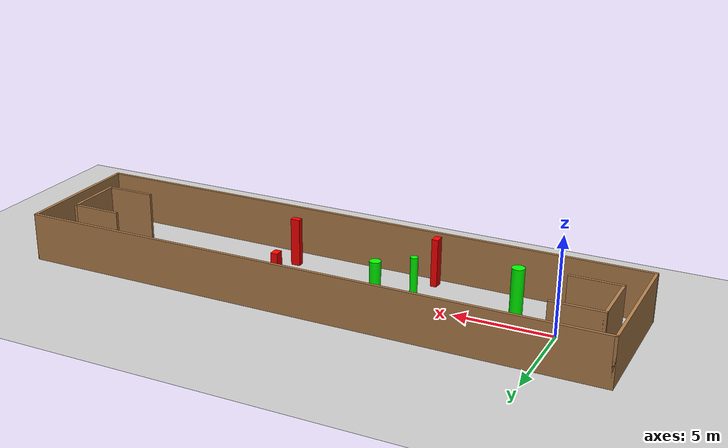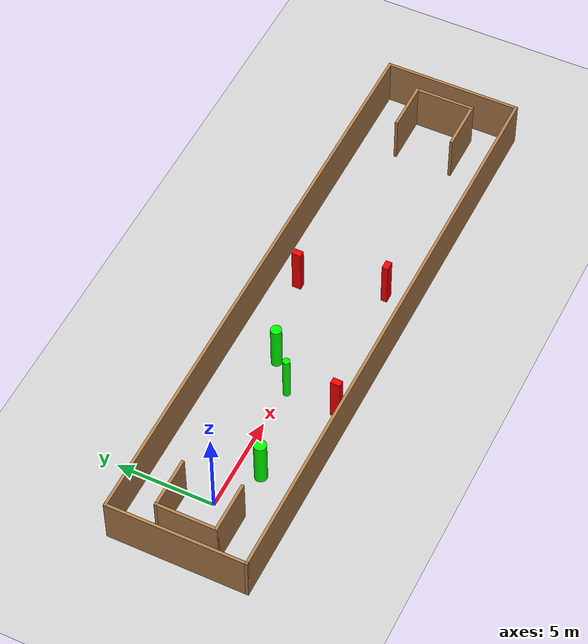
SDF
<sdf version="1.7">
 <world name="default">
  <light name="sun" type="directional">
   <pose>0 0 10 0 -0 0</pose>
   <diffuse>0.8 0.8 0.8 1</diffuse>
   <specular>0.2 0.2 0.2 1</specular>
   <attenuation>
    <range>1000</range>
    <constant>0.9</constant>
    <linear>0.01</linear>
    <quadratic>0.001</quadratic>
   </attenuation>
   <direction>-0.5 0.1 -0.9</direction>
   <spot><inner_angle>0</inner_angle><outer_angle>0</outer_angle><falloff>0</falloff></spot>
  </light>
  <model name="ground_plane">
   <static>1</static>
   <link name="link">
    <collision name="collision">
     <geometry><plane><normal>0 0 1</normal><size>100 100</size></plane></geometry>
     <surface>
      <contact><collide_bitmask>65535</collide_bitmask></contact>
      <friction><ode><mu>100</mu><mu2>50</mu2></ode></friction>
     </surface>
    </collision>
    <visual name="visual">
     <cast_shadows>0</cast_shadows>
     <geometry><plane><normal>0 0 1</normal><size>100 100</size></plane></geometry>
     <material>
      <script><uri>file://media/materials/scripts/gazebo.material</uri><name>Gazebo/Grey</name></script>
     </material>
    </visual>
   </link>
  </model>
  <gravity>0 0 -9.8</gravity>
  <magnetic_field>6e-06 2.3e-05 -4.2e-05</magnetic_field>
  <atmosphere type="adiabatic"/>
  <physics type="ode">
   <max_step_size>0.001</max_step_size>
   <real_time_factor>1</real_time_factor>
   <real_time_update_rate>1000</real_time_update_rate>
  </physics>
  <scene><ambient>0.4 0.4 0.4 1</ambient><background>0.7 0.7 0.7 1</background><shadows>1</shadows></scene>
  <spherical_coordinates>
   <surface_model>EARTH_WGS84</surface_model>
   <latitude_deg>0</latitude_deg>
   <longitude_deg>0</longitude_deg>
   <elevation>0</elevation>
   <heading_deg>0</heading_deg>
  </spherical_coordinates>
  <model name="my_base_walls">
   <link name="Wall_0">
    <collision name="Wall_0_Collision">
     <geometry><box><size>7.15 0.15 2.5</size></box></geometry>
     <pose>0 0 1.25 0 -0 0</pose>
    </collision>
    <visual name="Wall_0_Visual">
     <pose>0 0 1.25 0 -0 0</pose>
     <geometry><box><size>7.15 0.15 2.5</size></box></geometry>
     <material>
      <script><uri>file://media/materials/scripts/gazebo.material</uri><name>Gazebo/Wood</name></script>
      <ambient>1 1 1 1</ambient>
     </material>
     <meta><layer>0</layer></meta>
    </visual>
    <pose>-15 0 0 0 -0 1.5708</pose>
   </link>
   <link name="Wall_10">
    <collision name="Wall_10_Collision">
     <geometry><box><size>2.65 0.15 2.5</size></box></geometry>
     <pose>0 0 1.25 0 -0 0</pose>
    </collision>
    <visual name="Wall_10_Visual">
     <pose>0 0 1.25 0 -0 0</pose>
     <geometry><box><size>2.65 0.15 2.5</size></box></geometry>
     <material>
      <script><uri>file://media/materials/scripts/gazebo.material</uri><name>Gazebo/Wood</name></script>
      <ambient>1 1 1 1</ambient>
     </material>
     <meta><layer>0</layer></meta>
    </visual>
    <pose>-12.75 -1.5 0 0 -0 0</pose>
   </link>
   <link name="Wall_12">
    <collision name="Wall_12_Collision">
     <geometry><box><size>2.65 0.15 2.5</size></box></geometry>
     <pose>0 0 1.25 0 -0 0</pose>
    </collision>
    <visual name="Wall_12_Visual">
     <pose>0 0 1.25 0 -0 0</pose>
     <geometry><box><size>2.65 0.15 2.5</size></box></geometry>
     <material>
      <script><uri>file://media/materials/scripts/gazebo.material</uri><name>Gazebo/Wood</name></script>
      <ambient>1 1 1 1</ambient>
     </material>
     <meta><layer>0</layer></meta>
    </visual>
    <pose>-12.75 1.5 0 0 -0 0</pose>
   </link>
   <link name="Wall_14">
    <collision name="Wall_14_Collision">
     <geometry><box><size>3.15 0.15 2.5</size></box></geometry>
     <pose>0 0 1.25 0 -0 0</pose>
    </collision>
    <visual name="Wall_14_Visual">
     <pose>0 0 1.25 0 -0 0</pose>
     <geometry><box><size>3.15 0.15 2.5</size></box></geometry>
     <material>
      <script><uri>file://media/materials/scripts/gazebo.material</uri><name>Gazebo/Wood</name></script>
      <ambient>1 1 1 1</ambient>
     </material>
     <meta><layer>0</layer></meta>
    </visual>
    <pose>14 0 0 0 -0 -1.5708</pose>
   </link>
   <link name="Wall_15">
    <collision name="Wall_15_Collision">
     <geometry><box><size>2.65 0.15 2.5</size></box></geometry>
     <pose>0 0 1.25 0 -0 0</pose>
    </collision>
    <visual name="Wall_15_Visual">
     <pose>0 0 1.25 0 -0 0</pose>
     <geometry><box><size>2.65 0.15 2.5</size></box></geometry>
     <material>
      <script><uri>file://media/materials/scripts/gazebo.material</uri><name>Gazebo/Wood</name></script>
      <ambient>1 1 1 1</ambient>
     </material>
     <meta><layer>0</layer></meta>
    </visual>
    <pose>12.75 -1.5 0 0 -0 3.14159</pose>
   </link>
   <link name="Wall_17">
    <collision name="Wall_17_Collision">
     <geometry><box><size>2.65 0.15 2.5</size></box></geometry>
     <pose>0 0 1.25 0 -0 0</pose>
    </collision>
    <visual name="Wall_17_Visual">
     <pose>0 0 1.25 0 -0 0</pose>
     <geometry><box><size>2.65 0.15 2.5</size></box></geometry>
     <material>
      <script><uri>file://media/materials/scripts/gazebo.material</uri><name>Gazebo/Wood</name></script>
      <ambient>1 1 1 1</ambient>
     </material>
     <meta><layer>0</layer></meta>
    </visual>
    <pose>12.75 1.5 0 0 -0 3.14159</pose>
   </link>
   <link name="Wall_2">
    <collision name="Wall_2_Collision">
     <geometry><box><size>30.15 0.15 2.5</size></box></geometry>
     <pose>0 0 1.25 0 -0 0</pose>
    </collision>
    <visual name="Wall_2_Visual">
     <pose>0 0 1.25 0 -0 0</pose>
     <geometry><box><size>30.15 0.15 2.5</size></box></geometry>
     <material>
      <script><uri>file://media/materials/scripts/gazebo.material</uri><name>Gazebo/Wood</name></script>
      <ambient>1 1 1 1</ambient>
     </material>
     <meta><layer>0</layer></meta>
    </visual>
    <pose>-0 -3.5 0 0 -0 0</pose>
   </link>
   <link name="Wall_4">
    <collision name="Wall_4_Collision">
     <geometry><box><size>30.15 0.15 2.5</size></box></geometry>
     <pose>0 0 1.25 0 -0 0</pose>
    </collision>
    <visual name="Wall_4_Visual">
     <pose>0 0 1.25 0 -0 0</pose>
     <geometry><box><size>30.15 0.15 2.5</size></box></geometry>
     <material>
      <script><uri>file://media/materials/scripts/gazebo.material</uri><name>Gazebo/Wood</name></script>
      <ambient>1 1 1 1</ambient>
     </material>
     <meta><layer>0</layer></meta>
    </visual>
    <pose>-0 3.5 0 0 -0 0</pose>
   </link>
   <link name="Wall_6">
    <collision name="Wall_6_Collision">
     <geometry><box><size>7.15 0.15 2.5</size></box></geometry>
     <pose>0 0 1.25 0 -0 0</pose>
    </collision>
    <visual name="Wall_6_Visual">
     <pose>0 0 1.25 0 -0 0</pose>
     <geometry><box><size>7.15 0.15 2.5</size></box></geometry>
     <material>
      <script><uri>file://media/materials/scripts/gazebo.material</uri><name>Gazebo/Wood</name></script>
      <ambient>1 1 1 1</ambient>
     </material>
     <meta><layer>0</layer></meta>
    </visual>
    <pose>15 0 0 0 -0 -1.5708</pose>
   </link>
   <link name="Wall_9">
    <collision name="Wall_9_Collision">
     <geometry><box><size>3.15 0.15 2.5</size></box></geometry>
     <pose>0 0 1.25 0 -0 0</pose>
    </collision>
    <visual name="Wall_9_Visual">
     <pose>0 0 1.25 0 -0 0</pose>
     <geometry><box><size>3.15 0.15 2.5</size></box></geometry>
     <material>
      <script><uri>file://media/materials/scripts/gazebo.material</uri><name>Gazebo/Wood</name></script>
      <ambient>1 1 1 1</ambient>
     </material>
     <meta><layer>0</layer></meta>
    </visual>
    <pose>-14 0 0 0 -0 -1.5708</pose>
   </link>
   <static>1</static>
   <pose>11.5 0 0 0 -0 0</pose>
  </model>
  <model name="cylinder1">
   <static>1</static>
   <link name="link">
    <inertial>
     <mass>1</mass>
     <inertia><ixx>0.5</ixx><ixy>0</ixy><ixz>0</ixz><iyy>0.5</iyy><iyz>0</iyz><izz>1</izz></inertia>
    </inertial>
    <collision name="collision">
     <geometry><cylinder><radius>0.2793119667077669</radius><length>2.5</length></cylinder></geometry>
    </collision>
    <visual name="visual">
     <geometry><cylinder><radius>0.2793119667077669</radius><length>2.5</length></cylinder></geometry>
     <material>
      <ambient>0 1 0 1</ambient>
      <diffuse>0 1 0 1</diffuse>
      <specular>0.1 0.1 0.1 1</specular>
      <emissive>0 0 0 0</emissive>
     </material>
    </visual>
   </link>
   <pose>8.530574994047926 1.0668649148545315 1.25 0 0 0</pose>
  </model>
  <model name="cylinder2">
   <static>1</static>
   <link name="link">
    <inertial>
     <mass>1</mass>
     <inertia><ixx>0.5</ixx><ixy>0</ixy><ixz>0</ixz><iyy>0.5</iyy><iyz>0</iyz><izz>1</izz></inertia>
    </inertial>
    <collision name="collision">
     <geometry><cylinder><radius>0.1872205840997141</radius><length>2.5</length></cylinder></geometry>
    </collision>
    <visual name="visual">
     <geometry><cylinder><radius>0.1872205840997141</radius><length>2.5</length></cylinder></geometry>
     <material>
      <ambient>0 1 0 1</ambient>
      <diffuse>0 1 0 1</diffuse>
      <specular>0.1 0.1 0.1 1</specular>
      <emissive>0 0 0 0</emissive>
     </material>
    </visual>
   </link>
   <pose>7.08743883282083 -0.17878546951408847 1.25 0 0 0</pose>
  </model>
  <model name="cylinder3">
   <static>1</static>
   <link name="link">
    <inertial>
     <mass>1</mass>
     <inertia><ixx>0.5</ixx><ixy>0</ixy><ixz>0</ixz><iyy>0.5</iyy><iyz>0</iyz><izz>1</izz></inertia>
    </inertial>
    <collision name="collision">
     <geometry><cylinder><radius>0.31550932020474287</radius><length>2.5</length></cylinder></geometry>
    </collision>
    <visual name="visual">
     <geometry><cylinder><radius>0.31550932020474287</radius><length>2.5</length></cylinder></geometry>
     <material>
      <ambient>0 1 0 1</ambient>
      <diffuse>0 1 0 1</diffuse>
      <specular>0.1 0.1 0.1 1</specular>
      <emissive>0 0 0 0</emissive>
     </material>
    </visual>
   </link>
   <pose>2.327673752148957 -1.2207983702803675 1.25 0 0 0</pose>
  </model>
  <model name="box1">
   <static>1</static>
   <link name="link">
    <inertial>
     <mass>1</mass>
     <inertia><ixx>0.083</ixx><ixy>0</ixy><ixz>0</ixz><iyy>0.083</iyy><iyz>0</iyz><izz>0.083</izz></inertia>
    </inertial>
    <collision name="collision">
     <geometry><box><size>0.3311762448270112 0.4908934600530601 2.5</size></box></geometry>
    </collision>
    <visual name="visual">
     <geometry><box><size>0.3311762448270112 0.4908934600530601 2.5</size></box></geometry>
     <material>
      <ambient>1 0 0 1</ambient>
      <diffuse>1 0 0 1</diffuse>
      <specular>0.1 0.1 0.1 1</specular>
      <emissive>0 0 0 0</emissive>
     </material>
    </visual>
    <sensor name="my_contact" type="contact">
     <contact><collision>box_collision</collision><topic>__default_topic__</topic></contact>
    </sensor>
   </link>
   <pose>7.020999068264082 -2.789983699616039 1.25 0 0 0</pose>
  </model>
  <model name="box2">
   <static>1</static>
   <link name="link">
    <inertial>
     <mass>1</mass>
     <inertia><ixx>0.083</ixx><ixy>0</ixy><ixz>0</ixz><iyy>0.083</iyy><iyz>0</iyz><izz>0.083</izz></inertia>
    </inertial>
    <collision name="collision">
     <geometry><box><size>0.3468995186710694 0.4685293860449479 2.5</size></box></geometry>
    </collision>
    <visual name="visual">
     <geometry><box><size>0.3468995186710694 0.4685293860449479 2.5</size></box></geometry>
     <material>
      <ambient>1 0 0 1</ambient>
      <diffuse>1 0 0 1</diffuse>
      <specular>0.1 0.1 0.1 1</specular>
      <emissive>0 0 0 0</emissive>
     </material>
    </visual>
    <sensor name="my_contact" type="contact">
     <contact><collision>box_collision</collision><topic>__default_topic__</topic></contact>
    </sensor>
   </link>
   <pose>13.168092667547997 2.222706288787684 1.25 0 0 0</pose>
  </model>
  <model name="box3">
   <static>1</static>
   <link name="link">
    <inertial>
     <mass>1</mass>
     <inertia><ixx>0.083</ixx><ixy>0</ixy><ixz>0</ixz><iyy>0.083</iyy><iyz>0</iyz><izz>0.083</izz></inertia>
    </inertial>
    <collision name="collision">
     <geometry><box><size>0.4797487665742968 0.3205399111859978 2.5</size></box></geometry>
    </collision>
    <visual name="visual">
     <geometry><box><size>0.4797487665742968 0.3205399111859978 2.5</size></box></geometry>
     <material>
      <ambient>1 0 0 1</ambient>
      <diffuse>1 0 0 1</diffuse>
      <specular>0.1 0.1 0.1 1</specular>
      <emissive>0 0 0 0</emissive>
     </material>
    </visual>
    <sensor name="my_contact" type="contact">
     <contact><collision>box_collision</collision><topic>__default_topic__</topic></contact>
    </sensor>
   </link>
   <pose>14.336516098686078 -1.9559606998831032 1.25 0 0 0</pose>
  </model>
 </world>
</sdf>
